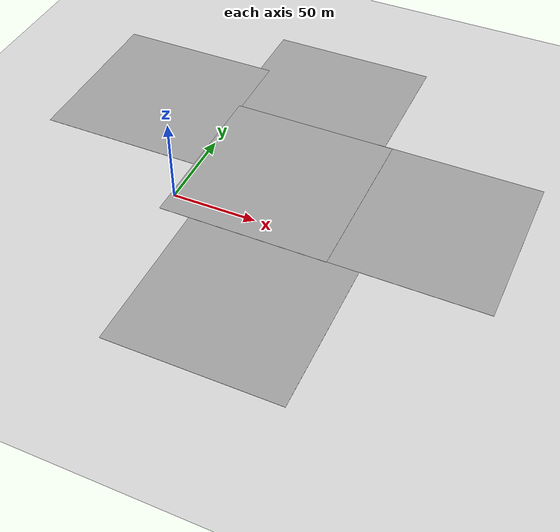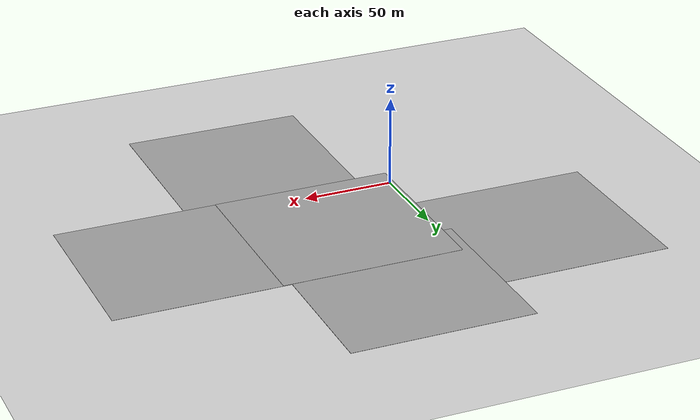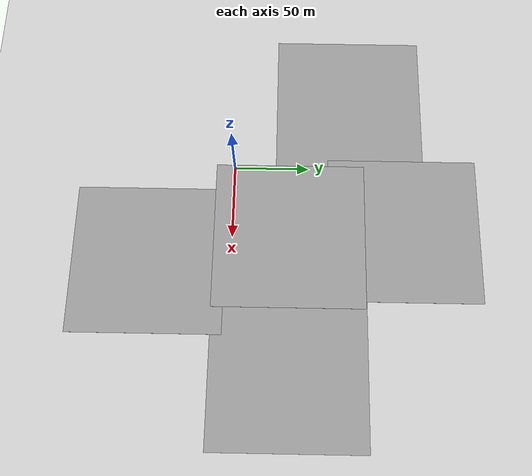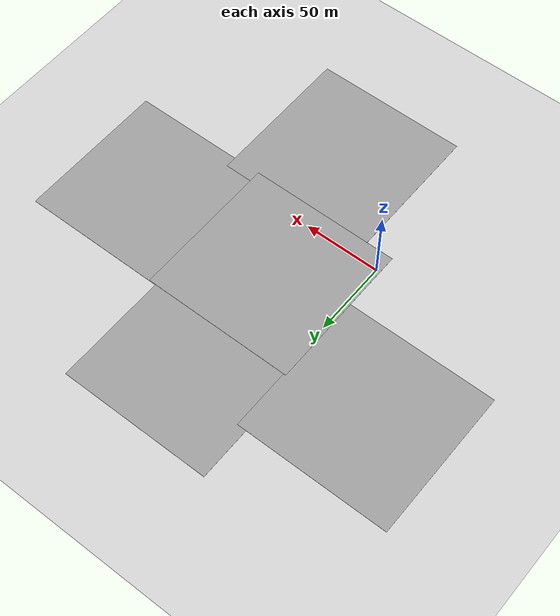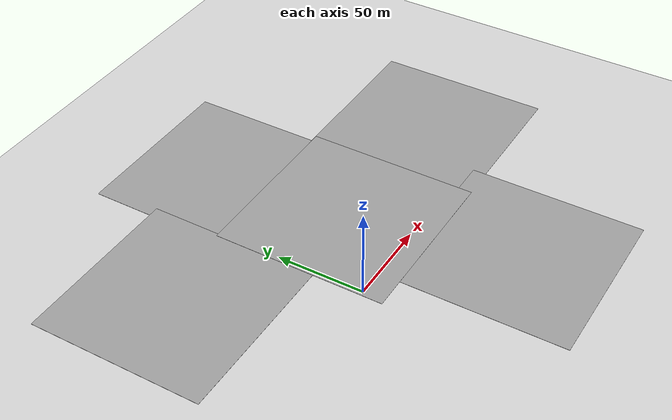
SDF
<sdf version="1.6">
 <world name="default">
  <plugin name="disable_physics" filename="libdisable_physics.so"/>
  <model name="ground_plane">
   <pose>0 0 0.05 0 -0 0</pose>
   <static>1</static>
   <link name="link">
    <collision name="collision">
     <geometry><plane><normal>0 0 1</normal><size>100 100</size></plane></geometry>
     <surface><friction><ode><mu>100</mu><mu2>50</mu2></ode></friction></surface>
    </collision>
    <visual name="visual">
     <cast_shadows>0</cast_shadows>
     <geometry><plane><normal>0 0 1</normal><size>100 100</size></plane></geometry>
     <material>
      <script><uri>file://media/materials/scripts/gazebo.material</uri><name>Gazebo/Grey</name></script>
     </material>
    </visual>
   </link>
  </model>
  <light name="sun" type="directional">
   <pose>0 0 10 0 -0 0</pose>
   <diffuse>0.8 0.8 0.8 1</diffuse>
   <specular>0.1 0.1 0.1 1</specular>
   <attenuation>
    <range>1000</range>
    <constant>0.9</constant>
    <linear>0.01</linear>
    <quadratic>0.001</quadratic>
   </attenuation>
   <direction>-0.5 0.5 -1</direction>
  </light>
  <gravity>0 0 -9.8</gravity>
  <magnetic_field>6e-06 2.3e-05 -4.2e-05</magnetic_field>
  <atmosphere type="adiabatic"/>
  <physics name="default_physics" default="0" type="ode">
   <max_step_size>0.001</max_step_size>
   <real_time_factor>1</real_time_factor>
   <real_time_update_rate>1000</real_time_update_rate>
  </physics>
  <scene><ambient>0.4 0.4 0.4 1</ambient><background>0.7 0.7 0.7 1</background><shadows>1</shadows></scene>
  <spherical_coordinates>
   <surface_model>EARTH_WGS84</surface_model>
   <latitude_deg>0</latitude_deg>
   <longitude_deg>0</longitude_deg>
   <elevation>0</elevation>
   <heading_deg>0</heading_deg>
  </spherical_coordinates>
  <model name="ground_plane_1">
   <static>1</static>
   <link name="link">
    <collision name="collision">
     <geometry><plane><normal>0 0 1</normal><size>100 100</size></plane></geometry>
     <surface><friction><ode><mu>100</mu><mu2>50</mu2></ode></friction></surface>
    </collision>
    <visual name="visual">
     <cast_shadows>0</cast_shadows>
     <geometry><plane><normal>0 0 1</normal><size>100 100</size></plane></geometry>
     <material>
      <script><uri>file://media/materials/scripts/gazebo.material</uri><name>Gazebo/Grey</name></script>
     </material>
    </visual>
   </link>
   <pose>47.4982 37.5667 0.05 0 -0 0</pose>
  </model>
  <model name="ground_plane_2">
   <static>1</static>
   <link name="link">
    <collision name="collision">
     <geometry><plane><normal>0 0 1</normal><size>100 100</size></plane></geometry>
     <surface><friction><ode><mu>100</mu><mu2>50</mu2></ode></friction></surface>
    </collision>
    <visual name="visual">
     <cast_shadows>0</cast_shadows>
     <geometry><plane><normal>0 0 1</normal><size>100 100</size></plane></geometry>
     <material>
      <script><uri>file://media/materials/scripts/gazebo.material</uri><name>Gazebo/Grey</name></script>
     </material>
    </visual>
   </link>
   <pose>65.7644 -54.6364 0 0 -0 0</pose>
  </model>
  <model name="ground_plane_3">
   <static>1</static>
   <link name="link">
    <collision name="collision">
     <geometry><plane><normal>0 0 1</normal><size>100 100</size></plane></geometry>
     <surface><friction><ode><mu>100</mu><mu2>50</mu2></ode></friction></surface>
    </collision>
    <visual name="visual">
     <cast_shadows>0</cast_shadows>
     <geometry><plane><normal>0 0 1</normal><size>100 100</size></plane></geometry>
     <material>
      <script><uri>file://media/materials/scripts/gazebo.material</uri><name>Gazebo/Grey</name></script>
     </material>
    </visual>
   </link>
   <pose>-50.9459 77.943 0 0 -0 0</pose>
  </model>
  <model name="ground_plane_4">
   <static>1</static>
   <link name="link">
    <collision name="collision">
     <geometry><plane><normal>0 0 1</normal><size>100 100</size></plane></geometry>
     <surface><friction><ode><mu>100</mu><mu2>50</mu2></ode></friction></surface>
    </collision>
    <visual name="visual">
     <cast_shadows>0</cast_shadows>
     <geometry><plane><normal>0 0 1</normal><size>100 100</size></plane></geometry>
     <material>
      <script><uri>file://media/materials/scripts/gazebo.material</uri><name>Gazebo/Grey</name></script>
     </material>
    </visual>
   </link>
   <pose>137.785 37.8406 0 0 -0 0</pose>
  </model>
  <model name="ground_plane_5">
   <static>1</static>
   <link name="link">
    <collision name="collision">
     <geometry><plane><normal>0 0 1</normal><size>100 100</size></plane></geometry>
     <surface><friction><ode><mu>100</mu><mu2>50</mu2></ode></friction></surface>
    </collision>
    <visual name="visual">
     <cast_shadows>0</cast_shadows>
     <geometry><plane><normal>0 0 1</normal><size>100 100</size></plane></geometry>
     <material>
      <script><uri>file://media/materials/scripts/gazebo.material</uri><name>Gazebo/Grey</name></script>
     </material>
    </visual>
   </link>
   <pose>42.8598 113.218 0 0 -0 0</pose>
  </model>
 </world>
</sdf>
